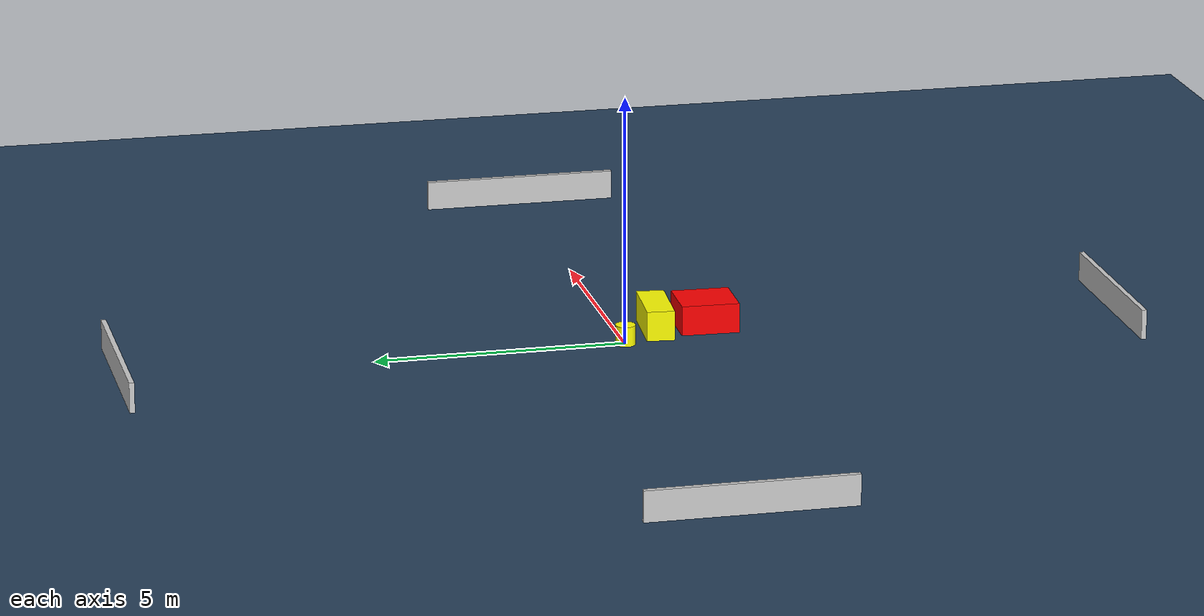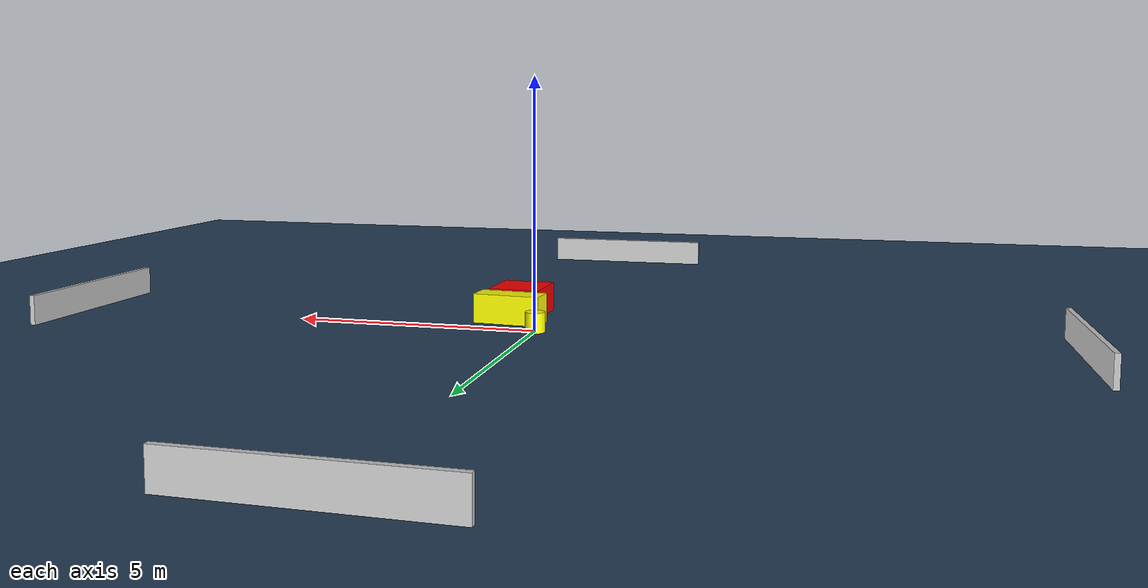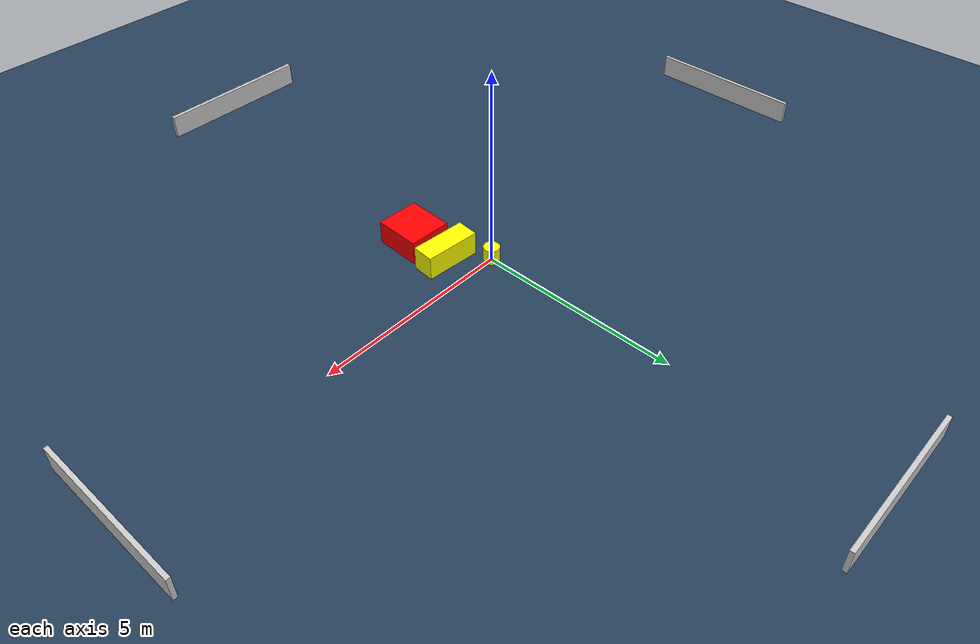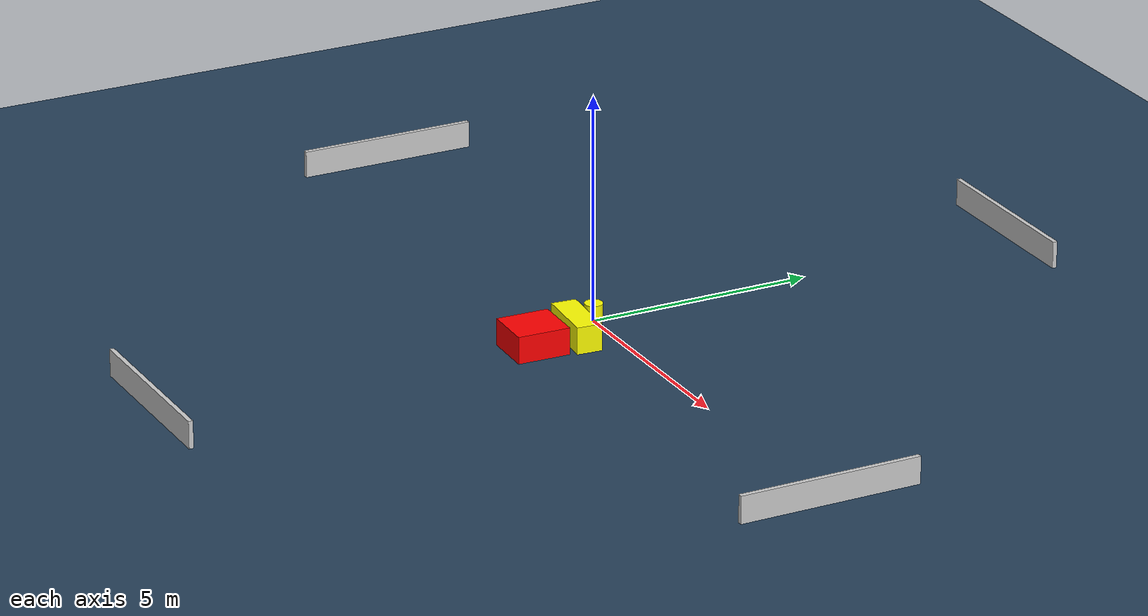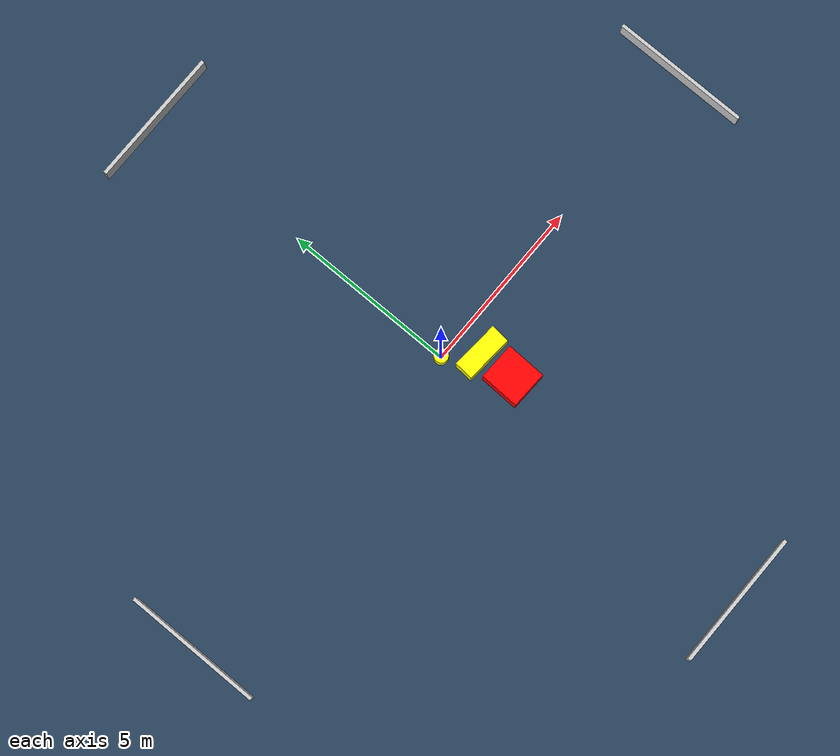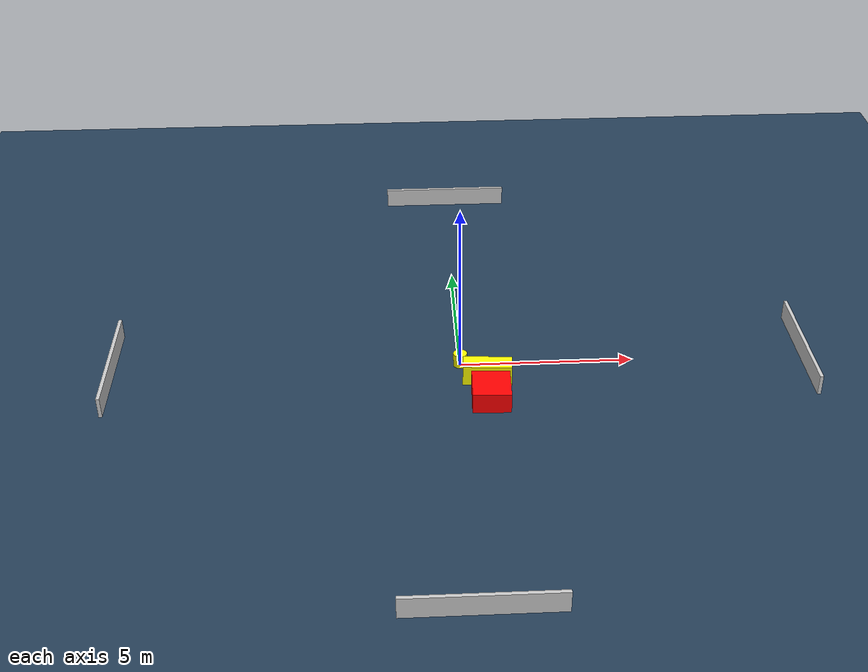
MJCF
<?xml version="1.0" ?>
<mujoco model="generated_environment">
  <option timestep="0.01" integrator="RK4" cone="elliptic"/>
  <default>
    <geom density="1"/>
  </default>
  <asset>
    <texture builtin="gradient" height="3072" name="skybox" rgb1="0.3 0.5 0.7" rgb2="0 0 0" type="skybox" width="512"/>
    <texture builtin="checker" height="300" name="groundplane" rgb1="0.2 0.3 0.4" rgb2="0.1 0.2 0.3" type="2d" width="300"/>
    <material name="groundplane" reflectance="0.2" texrepeat="5 5" texture="groundplane"/>
  </asset>
  <worldbody>
    <light dir="0 0 -1" directional="true" pos="0 0 1.5"/>
    <geom condim="3" friction="0.5 0.005 0.001" material="groundplane" name="floor" pos="0 0 0" size="0 0 0.05" type="plane"/>
    <body name="walls">
      <geom name="wall_1" condim="4" pos="-10.0 0.0 0.3" rgba="0.800000011920929 0.800000011920929 0.800000011920929 1.0" size="0.05 2.0 0.3" type="box"/>
      <geom name="wall_2" condim="4" pos="10.0 0.0 0.3" rgba="0.800000011920929 0.800000011920929 0.800000011920929 1.0" size="0.05 2.0 0.3" type="box"/>
      <geom name="wall_3" condim="4" pos="0.0 -10.0 0.3" rgba="0.800000011920929 0.800000011920929 0.800000011920929 1.0" size="2.0 0.05 0.3" type="box"/>
      <geom name="wall_4" condim="4" pos="0.0 10.0 0.3" rgba="0.800000011920929 0.800000011920929 0.800000011920929 1.0" size="2.0 0.05 0.3" type="box"/>
    </body>
    <body name="robot">
      <joint name="joint_x" type="slide" pos="0 0 0" axis="1 0 0"/>
      <joint name="joint_y" type="slide" pos="0 0 0" axis="0 1 0"/>
      <geom name="robot" type="cylinder" pos="0.0 0.0 0.2" size="0.2 0.2 0.0" mass="5.0" friction="1.0 0.005 0.0001" condim="4" rgba="1.0 1.0 0.0 1.0"/>
    </body>
    <body name="obstacle_1_movable">
      <geom name="obstacle_1_movable" condim="4" pos="0.7383661594331818 -0.7781902473073635 0.3" euler="0 0 355.61070270599555" friction="0.0 0.005 0.001" rgba="1.0 1.0 0.0 1.0" size="0.6982523244321337 0.2762173402841109 0.3" type="box" mass="0.1"/>
      <joint type="free"/>
    </body>
    <body name="obstacle_2_static">
      <geom name="obstacle_2_static" condim="4" pos="0.7749148594750962 -1.7993749151478509 0.3" euler="0 0 268.053883216794" friction="0.0 0.005 0.001" rgba="1.0 0.0 0.0 1.0" size="0.5792689837953098 0.540324681642214 0.3" type="box"/>
    </body>
  </worldbody>
  <actuator>
    <motor name="actuator_x" joint="joint_x" gear="1" ctrlrange="-1 1"/>
    <motor name="actuator_y" joint="joint_y" gear="1" ctrlrange="-1 1"/>
  </actuator>
</mujoco>
